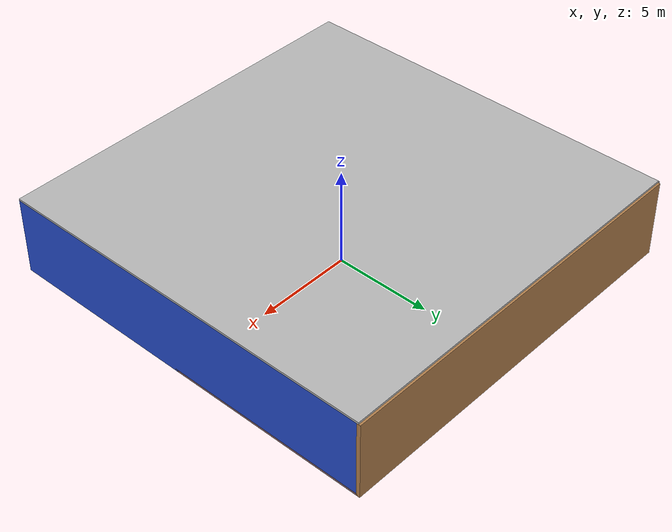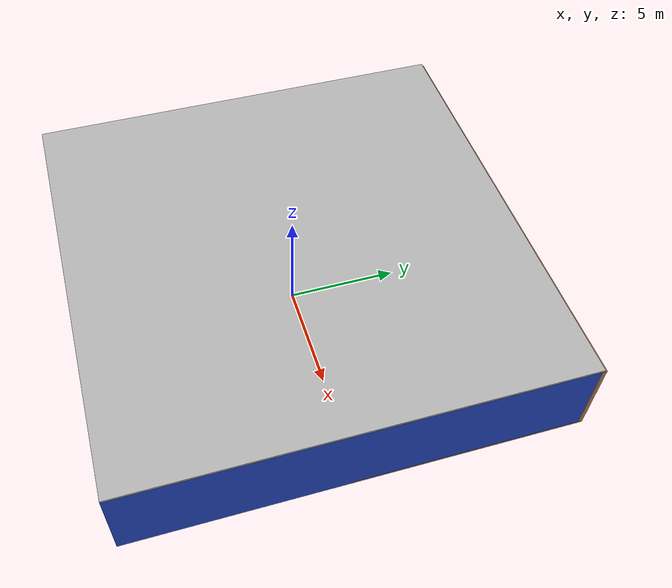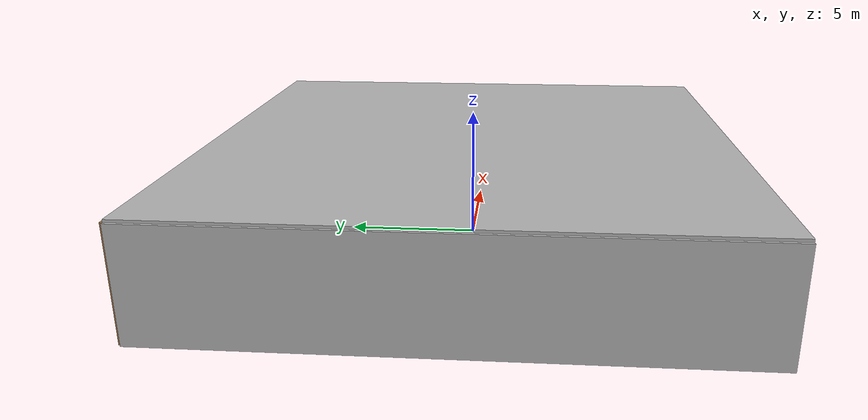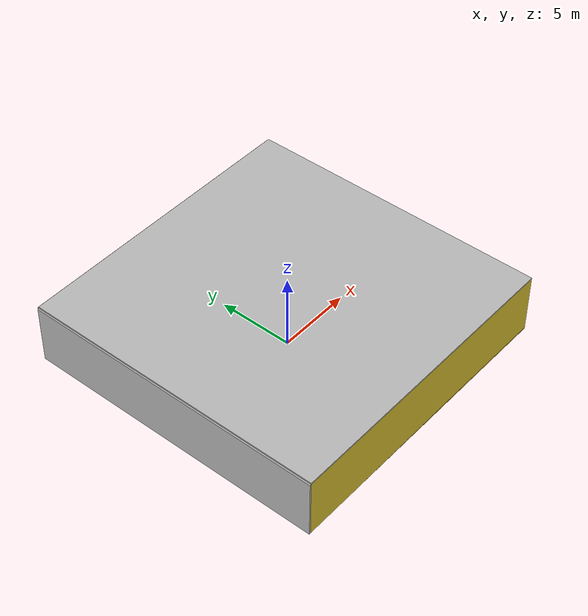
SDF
<sdf version="1.4">
 <world name="default">
  <physics type="ode">
   <max_step_size>0.001</max_step_size>
   <real_time_factor>1</real_time_factor>
   <real_time_update_rate>1000</real_time_update_rate>
   <gravity>0 0 -9.8</gravity>
  </physics>
  <scene><ambient>0.4 0.4 0.4 1</ambient><background>0.7 0.7 0.7 1</background><shadows>1</shadows></scene>
  <model name="Surrounding">
   <static>1</static>
   <link name="Ceiling">
    <collision name="Ceiling_Collision"><geometry><box><size>20 20 0.1</size></box></geometry></collision>
    <visual name="Ceiling_Visual">
     <geometry><box><size>20 20 0.1</size></box></geometry>
     <material>
      <script><uri>file://media/materials/scripts/gazebo.material</uri><name>Gazebo/Pioneer2Body</name></script>
     </material>
    </visual>
    <pose>0 0 4.05 0 0 0</pose>
   </link>
   <link name="Wall_South">
    <collision name="Wall_South_Collision">
     <geometry><box><size>20 0 4</size></box></geometry>
     <pose>0 0 2 0 -0 0</pose>
    </collision>
    <visual name="Wall_South_Visual">
     <pose>0 0 2 0 -0 0</pose>
     <geometry><box><size>20 0 4</size></box></geometry>
     <material>
      <script><uri>file://media/materials/scripts/gazebo.material</uri><name>Gazebo/ZincYellow</name></script>
     </material>
    </visual>
    <velocity_decay><linear>0</linear><angular>0</angular></velocity_decay>
    <pose>0 -10 0 0 -0 0</pose>
   </link>
   <link name="Wall_East">
    <collision name="Wall_21_Collision">
     <geometry><box><size>20 0 4</size></box></geometry>
     <pose>0 0 2 0 -0 0</pose>
    </collision>
    <visual name="Wall_21_Visual">
     <pose>0 0 2 0 -0 0</pose>
     <geometry><box><size>20 0 4</size></box></geometry>
     <material>
      <script><uri>file://media/materials/scripts/gazebo.material</uri><name>Gazebo/Blue</name></script>
     </material>
    </visual>
    <velocity_decay><linear>0</linear><angular>0</angular></velocity_decay>
    <pose>10 0 0 0 -0 1.5708</pose>
   </link>
   <link name="Wall_North">
    <collision name="Wall_22_Collision">
     <geometry><box><size>20 0.2 4</size></box></geometry>
     <pose>0 0 2 0 -0 0</pose>
    </collision>
    <visual name="Wall_22_Visual">
     <pose>0 0 2 0 -0 0</pose>
     <geometry><box><size>20 0.2 4</size></box></geometry>
     <material>
      <script><uri>file://media/materials/scripts/gazebo.material</uri><name>Gazebo/Wood</name></script>
     </material>
    </visual>
    <velocity_decay><linear>0</linear><angular>0</angular></velocity_decay>
    <pose>0 10 0 0 -0 0</pose>
   </link>
   <link name="Wall_West">
    <collision name="Wall_23_Collision">
     <geometry><box><size>20 0.2 4</size></box></geometry>
     <pose>0 0 2 0 -0 0</pose>
    </collision>
    <visual name="Wall_23_Visual">
     <pose>0 0 2 0 -0 0</pose>
     <geometry><box><size>20 0.2 4</size></box></geometry>
     <material>
      <script><uri>file://media/materials/scripts/gazebo.material</uri><name>Gazebo/LightOn</name></script>
     </material>
    </visual>
    <velocity_decay><linear>0</linear><angular>0</angular></velocity_decay>
    <pose>-10 0 0 0 0 -1.5708</pose>
   </link>
   <link name="Ground_link">
    <collision name="collision">
     <pose>0 0 .05 0 -0 0</pose>
     <geometry><box><size>20 20 0.1</size></box></geometry>
    </collision>
    <visual name="visual">
     <pose>0 0 .05 0 -0 0</pose>
     <geometry><box><size>20 20 0.1</size></box></geometry>
     <material>
      <script>
       <uri>file://media/materials/scripts/gazebo.material</uri>
       <name>Gazebo/OrangeTransparent</name>
      </script>
     </material>
    </visual>
   </link>
   <static>1</static>
  </model>
  <spherical_coordinates>
   <surface_model>EARTH_WGS84</surface_model>
   <latitude_deg>0</latitude_deg>
   <longitude_deg>0</longitude_deg>
   <elevation>0</elevation>
   <heading_deg>0</heading_deg>
  </spherical_coordinates>
  <light name="lightball_0" type="diffuse">
   <diffuse>0.8 0.8 0.8 1</diffuse>
   <specular>0.2 0.2 0.2 1</specular>
   <attenuation>
    <range>100</range>
    <constant>0.7</constant>
    <linear>0.01</linear>
    <quadratic>0.001</quadratic>
   </attenuation>
   <direction>-0.5 0.1 -0.9</direction>
   <pose>0.0276345896326 8.38402562099 2.62187423797 0 0 0</pose>
  </light>
  <light name="lightball_1" type="diffuse">
   <diffuse>0.8 0.8 0.8 1</diffuse>
   <specular>0.2 0.2 0.2 1</specular>
   <attenuation>
    <range>100</range>
    <constant>0.7</constant>
    <linear>0.01</linear>
    <quadratic>0.001</quadratic>
   </attenuation>
   <direction>-0.5 0.1 -0.9</direction>
   <pose>-9.83893152666 2.95749262525 2.78830366807 0 0 0</pose>
  </light>
  <light name="lightball_2" type="diffuse">
   <diffuse>0.8 0.8 0.8 1</diffuse>
   <specular>0.2 0.2 0.2 1</specular>
   <attenuation>
    <range>100</range>
    <constant>0.7</constant>
    <linear>0.01</linear>
    <quadratic>0.001</quadratic>
   </attenuation>
   <direction>-0.5 0.1 -0.9</direction>
   <pose>3.18453249918 5.66831150962 1.49564955163 0 0 0</pose>
  </light>
  <light name="lightball_3" type="diffuse">
   <diffuse>0.8 0.8 0.8 1</diffuse>
   <specular>0.2 0.2 0.2 1</specular>
   <attenuation>
    <range>100</range>
    <constant>0.7</constant>
    <linear>0.01</linear>
    <quadratic>0.001</quadratic>
   </attenuation>
   <direction>-0.5 0.1 -0.9</direction>
   <pose>8.28708657186 -2.45655805265 2.86958522714 0 0 0</pose>
  </light>
  <light name="lightball_4" type="diffuse">
   <diffuse>0.8 0.8 0.8 1</diffuse>
   <specular>0.2 0.2 0.2 1</specular>
   <attenuation>
    <range>100</range>
    <constant>0.7</constant>
    <linear>0.01</linear>
    <quadratic>0.001</quadratic>
   </attenuation>
   <direction>-0.5 0.1 -0.9</direction>
   <pose>-3.89689186997 -4.53552345199 1.45303673376 0 0 0</pose>
  </light>
  <light name="lightball_5" type="diffuse">
   <diffuse>0.8 0.8 0.8 1</diffuse>
   <specular>0.2 0.2 0.2 1</specular>
   <attenuation>
    <range>100</range>
    <constant>0.7</constant>
    <linear>0.01</linear>
    <quadratic>0.001</quadratic>
   </attenuation>
   <direction>-0.5 0.1 -0.9</direction>
   <pose>8.48179947577 -1.9261930671 2.62197860606 0 0 0</pose>
  </light>
  <light name="lightball_6" type="diffuse">
   <diffuse>0.8 0.8 0.8 1</diffuse>
   <specular>0.2 0.2 0.2 1</specular>
   <attenuation>
    <range>100</range>
    <constant>0.7</constant>
    <linear>0.01</linear>
    <quadratic>0.001</quadratic>
   </attenuation>
   <direction>-0.5 0.1 -0.9</direction>
   <pose>3.81735588525 1.08297180794 3.63576736632 0 0 0</pose>
  </light>
  <include>
   <uri>model://textured_shapes</uri>
   <pose>-6.8721267271 -0.560018191369 0 0 0 2.54075486118</pose>
  </include>
  <include>
   <uri>model://robocup_3Dsim_goal</uri>
   <pose>-8.25493706421 1.5169033918 0 0 0 1.66394062835</pose>
  </include>
  <include><uri>model://cabinet</uri><pose>-5.44449148384 -7.0464248061 0 0 0 0.128782823092</pose></include>
  <include>
   <uri>model://construction_cone</uri>
   <pose>3.99979694469 -6.90150670188 0 0 0 0.447788285694</pose>
  </include>
 </world>
</sdf>

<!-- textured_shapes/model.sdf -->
<sdf version="1.6">
  <model name="textured_shapes">
    <pose>0 0 0.5 0 0 0</pose>
    <link name="box">
      <pose>0 -1.5 0 0 0 0</pose>
      <collision name="collision">
        <geometry>
          <box>
            <size>1 1 1</size>
          </box>
        </geometry>
      </collision>
      <visual name="visual">
        <geometry>
          <box>
            <size>1 1 1</size>
          </box>
        </geometry>
        <material>
          <script>
            <uri>model://../model_source/models/textured_shapes/materials/scripts</uri>
            <uri>model://../model_source/models/textured_shapes/materials/textures</uri>
            <name>TexturedShape/Squares</name>
          </script>
        </material>
      </visual>
    </link>
    <link name="sphere">
      <collision name="collision">
        <geometry>
          <sphere>
            <radius>0.5</radius>
          </sphere>
        </geometry>
      </collision>
      <visual name="visual">
        <geometry>
          <sphere>
            <radius>0.5</radius>
          </sphere>
        </geometry>
        <material>
          <script>
            <uri>model://../model_source/models/textured_shapes/materials/scripts</uri>
            <uri>model://../model_source/models/textured_shapes/materials/textures</uri>
            <name>TexturedShape/Squares</name>
          </script>
        </material>
      </visual>
    </link>
    <link name="cylinder">
      <pose>0 1.5 0 0 0 0</pose>
      <collision name="collision">
        <geometry>
          <cylinder>
            <radius>0.5</radius>
            <length>1</length>
          </cylinder>
        </geometry>
      </collision>
      <visual name="visual">
        <geometry>
          <cylinder>
            <radius>0.5</radius>
            <length>1</length>
          </cylinder>
        </geometry>
        <material>
          <script>
            <uri>model://../model_source/models/textured_shapes/materials/scripts</uri>
            <uri>model://../model_source/models/textured_shapes/materials/textures</uri>
            <name>TexturedShape/Squares</name>
          </script>
        </material>
      </visual>
    </link>
  </model>
</sdf>

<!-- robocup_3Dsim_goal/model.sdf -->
<sdf version="1.5">
  <model name="robocup_3d_goal">
    <static>true</static>
    <link name="left_post">
      <pose>0 1.05 0.45 0 0 0</pose>
      <collision name="collision">
        <geometry>
          <cylinder>
            <radius>0.05</radius>
            <length>0.9</length>
          </cylinder>
        </geometry>
      </collision>
      <visual name="visual">
        <geometry>
          <cylinder>
            <radius>0.05</radius>
            <length>0.9</length>
          </cylinder>
        </geometry>
        <material>
          <script>
            <uri>file://media/materials/scripts/gazebo.material</uri>
            <name>Gazebo/ZincYellow</name>
          </script>
        </material>
      </visual>
    </link>
    <link name="left_support_horiz_lower">
      <pose>0.30 1.05 0.01 0 0 0</pose>
      <collision name="collision">
        <geometry>
          <box>
            <size>0.50 0.02 0.02</size>
          </box>
        </geometry>
      </collision>
      <visual name="visual">
        <geometry>
          <box>
            <size>0.50 0.02 0.02</size>
          </box>
        </geometry>
        <material>
          <script>
            <uri>file://media/materials/scripts/gazebo.material</uri>
            <name>Gazebo/White</name>
          </script>
        </material>
      </visual>
    </link>
    <link name="left_support_horiz_upper">
      <pose>0.30 1.05 0.79 0 0 0</pose>
      <collision name="collision">
        <geometry>
          <box>
            <size>0.50 0.02 0.02</size>
          </box>
        </geometry>
      </collision>
      <visual name="visual">
        <geometry>
          <box>
            <size>0.50 0.02 0.02</size>
          </box>
        </geometry>
        <material>
          <script>
            <uri>file://media/materials/scripts/gazebo.material</uri>
            <name>Gazebo/White</name>
          </script>
        </material>
      </visual>
    </link>
    <link name="left_support_vertical">
      <pose>0.56 1.05 0.4 0 1.5708 0</pose>
      <collision name="collision">
        <geometry>
          <box>
            <size>0.80 0.02 0.02</size>
          </box>
        </geometry>
      </collision>
      <visual name="visual">
        <geometry>
          <box>
            <size>0.80 0.02 0.02</size>
          </box>
        </geometry>
        <material>
          <script>
            <uri>file://media/materials/scripts/gazebo.material</uri>
            <name>Gazebo/White</name>
          </script>
        </material>
      </visual>
    </link>
    <link name="right_support_horiz_lower">
      <pose>0.30 -1.05 0.01 0 0 0</pose>
      <collision name="collision">
        <geometry>
          <box>
            <size>0.50 0.02 0.02</size>
          </box>
        </geometry>
      </collision>
      <visual name="visual">
        <geometry>
          <box>
            <size>0.50 0.02 0.02</size>
          </box>
        </geometry>
        <material>
          <script>
            <uri>file://media/materials/scripts/gazebo.material</uri>
            <name>Gazebo/White</name>
          </script>
        </material>
      </visual>
    </link>
    <link name="right_support_horiz_upper">
      <pose>0.30 -1.05 0.79 0 0 0</pose>
      <collision name="collision">
        <geometry>
          <box>
            <size>0.50 0.02 0.02</size>
          </box>
        </geometry>
      </collision>
      <visual name="visual">
        <geometry>
          <box>
            <size>0.50 0.02 0.02</size>
          </box>
        </geometry>
        <material>
          <script>
            <uri>file://media/materials/scripts/gazebo.material</uri>
            <name>Gazebo/White</name>
          </script>
        </material>
      </visual>
    </link>
    <link name="right_support_vertical">
      <pose>0.56 -1.05 0.4 0 1.5708 0</pose>
      <collision name="collision">
        <geometry>
          <box>
            <size>0.80 0.02 0.02</size>
          </box>
        </geometry>
      </collision>
      <visual name="visual">
        <geometry>
          <box>
            <size>0.80 0.02 0.02</size>
          </box>
        </geometry>
        <material>
          <script>
            <uri>file://media/materials/scripts/gazebo.material</uri>
            <name>Gazebo/White</name>
          </script>
        </material>
      </visual>
    </link>
    <link name="center_support_horiz_lower">
      <pose>0.56 0 0.01 0 1.5708 0</pose>
      <collision name="collision">
        <geometry>
          <box>
            <size>0.02 2.08 0.02</size>
          </box>
        </geometry>
      </collision>
      <visual name="visual">
        <geometry>
          <box>
            <size>0.02 2.08 0.02</size>
          </box>
        </geometry>
        <material>
          <script>
            <uri>file://media/materials/scripts/gazebo.material</uri>
            <name>Gazebo/White</name>
          </script>
        </material>
      </visual>
    </link>
    <link name="center_support_horiz_upper">
      <pose>0.56 0 0.79 0 1.5708 0</pose>
      <collision name="collision">
        <geometry>
          <box>
            <size>0.02 2.08 0.02</size>
          </box>
        </geometry>
      </collision>
      <visual name="visual">
        <geometry>
          <box>
            <size>0.02 2.08 0.02</size>
          </box>
        </geometry>
        <material>
          <script>
            <uri>file://media/materials/scripts/gazebo.material</uri>
            <name>Gazebo/White</name>
          </script>
        </material>
      </visual>
    </link>
    <link name="right_post">
      <pose>0 -1.05 0.45 0 0 0</pose>
      <collision name="collision">
        <geometry>
          <cylinder>
            <radius>0.05</radius>
            <length>0.9</length>
          </cylinder>
        </geometry>
      </collision>
      <visual name="visual">
        <geometry>
          <cylinder>
            <radius>0.05</radius>
            <length>0.9</length>
          </cylinder>
        </geometry>
        <material>
          <script>
            <uri>file://media/materials/scripts/gazebo.material</uri>
            <name>Gazebo/ZincYellow</name>
          </script>
        </material>
      </visual>
    </link>
    <link name="crossbar">
      <pose>0 0 0.85 1.57 1.57 0</pose>
      <collision name="collision">
        <geometry>
          <cylinder>
            <radius>0.05</radius>
            <length>2.0</length>
          </cylinder>
        </geometry>
      </collision>
      <visual name="visual">
        <geometry>
          <cylinder>
            <radius>0.05</radius>
            <length>2.0</length>
          </cylinder>
        </geometry>
        <material>
          <script>
            <uri>file://media/materials/scripts/gazebo.material</uri>
            <name>Gazebo/ZincYellow</name>
          </script>
        </material>
      </visual>
    </link>
    <link name="center_net">
      <pose>0.56 0 0.40 0 0 0</pose>
      <collision name="collision">
        <geometry>
          <box>
            <size>0.01 2.1 0.80</size>
          </box>
        </geometry>
      </collision>
      <visual name="visual">
        <geometry>
          <box>
            <size>0.01 2.1 0.80</size>
          </box>
        </geometry>
        <material>
          <script>
            <uri>model://../model_source/models/robocup09_spl_field/materials/scripts/</uri>
            <uri>model://../model_source/models/robocup09_spl_field/materials/textures/</uri>
            <name>RoboCup/Net</name>
          </script>
        </material>
      </visual>
    </link>
    <link name="left_net">
      <pose>0.30 1.05 0.40 0 0 0</pose>
      <collision name="collision">
        <geometry>
          <box>
            <size>0.50 0.01 0.76</size>
          </box>
        </geometry>
      </collision>
      <visual name="visual">
        <geometry>
          <box>
            <size>0.50 0.01 0.76</size>
          </box>
        </geometry>
        <material>
          <script>
            <uri>model://../model_source/models/robocup09_spl_field/materials/scripts/</uri>
            <uri>model://../model_source/models/robocup09_spl_field/materials/textures/</uri>
            <name>RoboCup/Net</name>
          </script>
        </material>
      </visual>
    </link>
    <link name="right_net">
      <pose>0.30 -1.05 0.40 0 0 0</pose>
      <collision name="collision">
        <geometry>
          <box>
            <size>0.50 0.01 0.76</size>
          </box>
        </geometry>
      </collision>
      <visual name="visual">
        <geometry>
          <box>
            <size>0.50 0.01 0.76</size>
          </box>
        </geometry>
        <material>
          <script>
            <uri>model://../model_source/models/robocup09_spl_field/materials/scripts/</uri>
            <uri>model://../model_source/models/robocup09_spl_field/materials/textures/</uri>
            <name>RoboCup/Net</name>
          </script>
        </material>
      </visual>
    </link>
  </model>
</sdf>

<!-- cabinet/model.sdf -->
<sdf version="1.5">
  <model name="cabinet">
    <static>true</static>
    <link name="cabinet_bottom_plate">
      <inertial>
        <pose>0 0 -1 0 0 0</pose>
        <inertia>
          <ixx>2.050000</ixx>
          <ixy>0</ixy>
          <ixz>0</ixz>
          <iyy>2.050000</iyy>
          <iyz>0</iyz>
          <izz>2.050000</izz>
        </inertia>
        <mass>25.000000</mass>
      </inertial>
      <collision name="cabinet_bottom_plate_geom">
        <pose>0 0 0.010000 0 0 0</pose>
        <geometry>
          <box>
            <size>0.450000 0.450000 0.020000</size>
          </box>
        </geometry>
      </collision>
      <visual name="cabinet_bottom_plate_geom_visual">
        <pose>0 0 0.010000 0 0 0</pose>
        <geometry>
          <box>
            <size>0.450000 0.450000 0.020000</size>
          </box>
        </geometry>
        <material>
          <script>
            <uri>model://media/materials/scripts/gazebo.material</uri>
            <name>Gazebo/Wood</name>
          </script>
        </material>
      </visual>
      <collision name="cabinet_bottom_plate_geom_cabinet_back_plate">
        <pose>0.235000 0 0.510000 0 0 0</pose>
        <geometry>
          <box>
            <size>0.020000 0.450000 1.020000</size>
          </box>
        </geometry>
      </collision>
      <visual name="cabinet_bottom_plate_geom_cabinet_back_plate_visual">
        <pose>0.235000 0 0.510000 0 0 0</pose>
        <geometry>
          <box>
            <size>0.020000 0.450000 1.020000</size>
          </box>
        </geometry>
        <material>
          <script>
            <uri>model://media/materials/scripts/gazebo.material</uri>
            <name>Gazebo/Wood</name>
          </script>
        </material>
      </visual>
      <collision name="cabinet_bottom_plate_geom_cabinet_left_plate">
        <pose>0 0.235000 0.510000 0 0 0</pose>
        <geometry>
          <box>
            <size>0.450000 0.020000 1.020000</size>
          </box>
        </geometry>
      </collision>
      <visual name="cabinet_bottom_plate_geom_cabinet_left_plate_visual">
        <pose>0 0.235000 0.510000 0 0 0</pose>
        <geometry>
          <box>
            <size>0.450000 0.020000 1.020000</size>
          </box>
        </geometry>
        <material>
          <script>
            <uri>model://media/materials/scripts/gazebo.material</uri>
            <name>Gazebo/Wood</name>
          </script>
        </material>
      </visual>
      <collision name="cabinet_bottom_plate_geom_cabinet_middle_plate">
        <pose>0 0 0.510000 0 0 0</pose>
        <geometry>
          <box>
            <size>0.450000 0.450000 0.020000</size>
          </box>
        </geometry>
      </collision>
      <visual name="cabinet_bottom_plate_geom_cabinet_middle_plate_visual">
        <pose>0 0 0.510000 0 0 0</pose>
        <geometry>
          <box>
            <size>0.450000 0.450000 0.020000</size>
          </box>
        </geometry>
        <material>
          <script>
            <uri>model://media/materials/scripts/gazebo.material</uri>
            <name>Gazebo/Wood</name>
          </script>
        </material>
      </visual>
      <collision name="cabinet_bottom_plate_geom_cabinet_right_plate">
        <pose>0 -0.235000 0.510000 0 0 0</pose>
        <geometry>
          <box>
            <size>0.450000 0.020000 1.020000</size>
          </box>
        </geometry>
      </collision>
      <visual name="cabinet_bottom_plate_geom_cabinet_right_plate_visual">
        <pose>0 -0.235000 0.510000 0 0 0</pose>
        <geometry>
          <box>
            <size>0.450000 0.020000 1.020000</size>
          </box>
        </geometry>
        <material>
          <script>
            <uri>model://media/materials/scripts/gazebo.material</uri>
            <name>Gazebo/Wood</name>
          </script>
        </material>
      </visual>
      <collision name="cabinet_bottom_plate_geom_cabinet_top_plate">
        <pose>0 0 1.010000 0 0 0</pose>
        <geometry>
          <box>
            <size>0.450000 0.450000 0.020000</size>
          </box>
        </geometry>
      </collision>
      <visual name="cabinet_bottom_plate_geom_cabinet_top_plate_visual">
        <pose>0 0 1.010000 0 0 0</pose>
        <geometry>
          <box>
            <size>0.450000 0.450000 0.020000</size>
          </box>
        </geometry>
        <material>
          <script>
            <uri>model://media/materials/scripts/gazebo.material</uri>
            <name>Gazebo/Wood</name>
          </script>
        </material>
      </visual>
    </link>
  </model>
</sdf>

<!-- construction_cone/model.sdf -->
<sdf version="1.5">
  <model name="Construction Cone">
    <link name="link">
      <collision name="collision">
        <geometry>
          <mesh>
            <scale>10 10 10</scale>
            <uri>file://isr-testbed/construction_cone/meshes/construction_cone.dae</uri>
          </mesh>
        </geometry>
      </collision>
      <visual name="visual">
        <geometry>
          <mesh>
            <scale>10 10 10</scale>
            <uri>file://isr-testbed/construction_cone/meshes/construction_cone.dae</uri>
          </mesh>
        </geometry>
      </visual>
    </link>
  </model>
</sdf>
